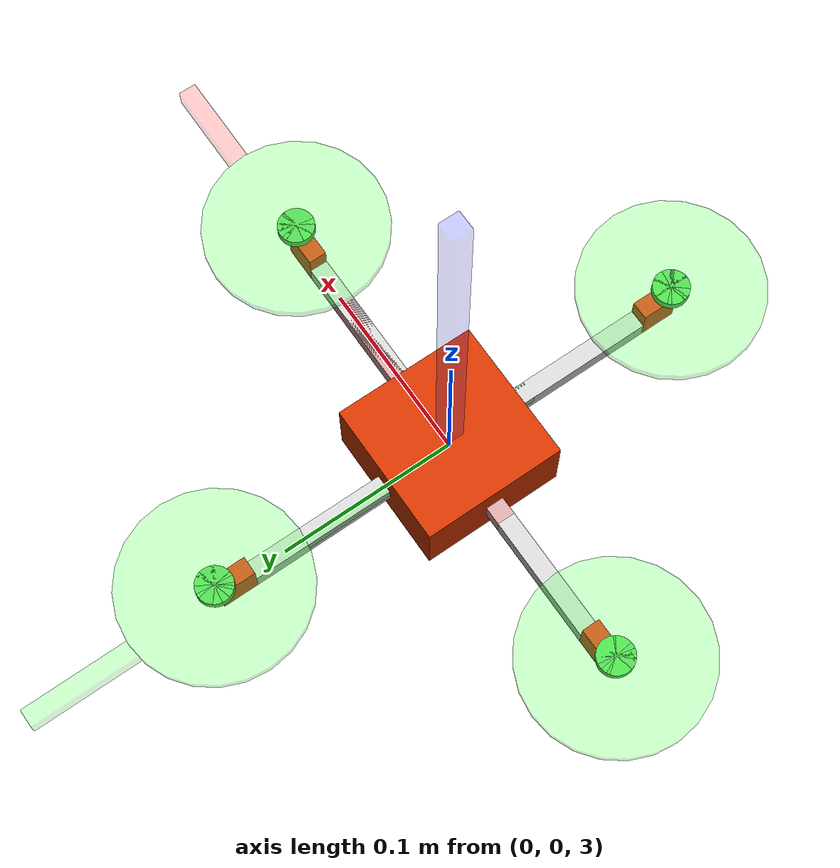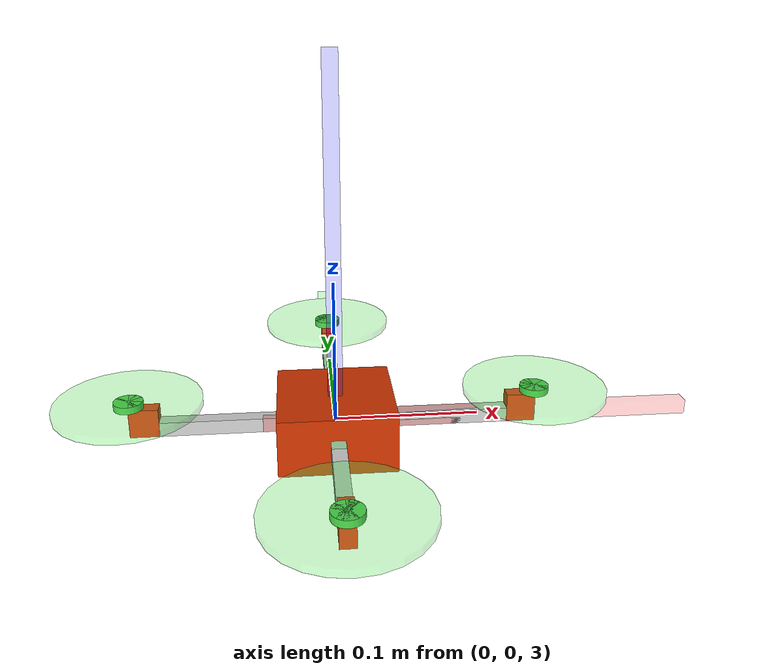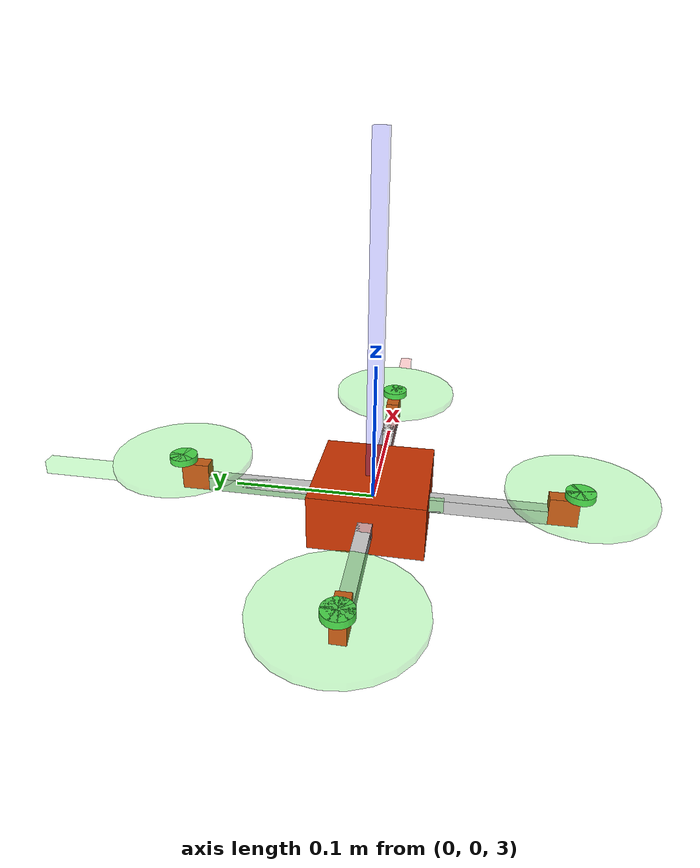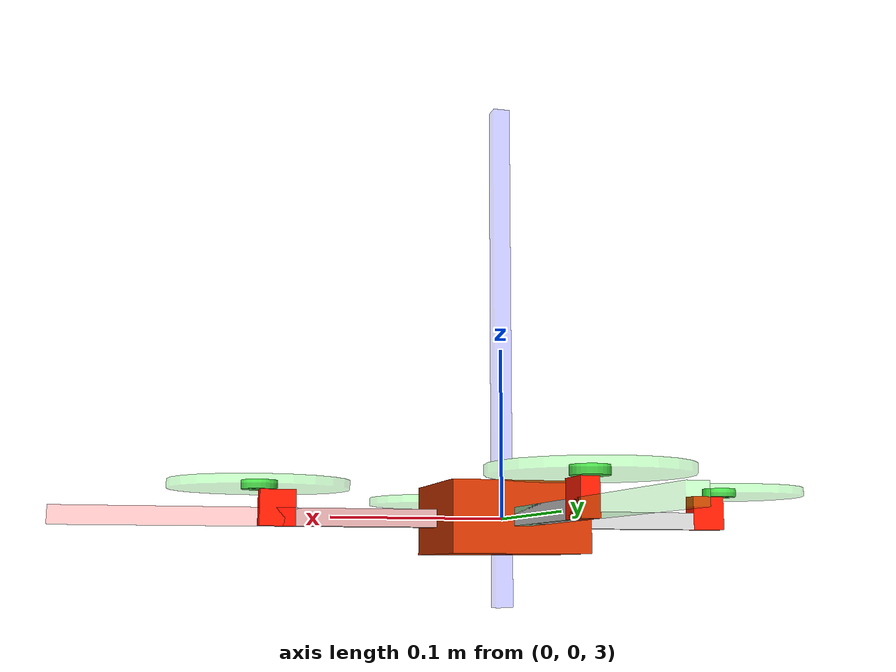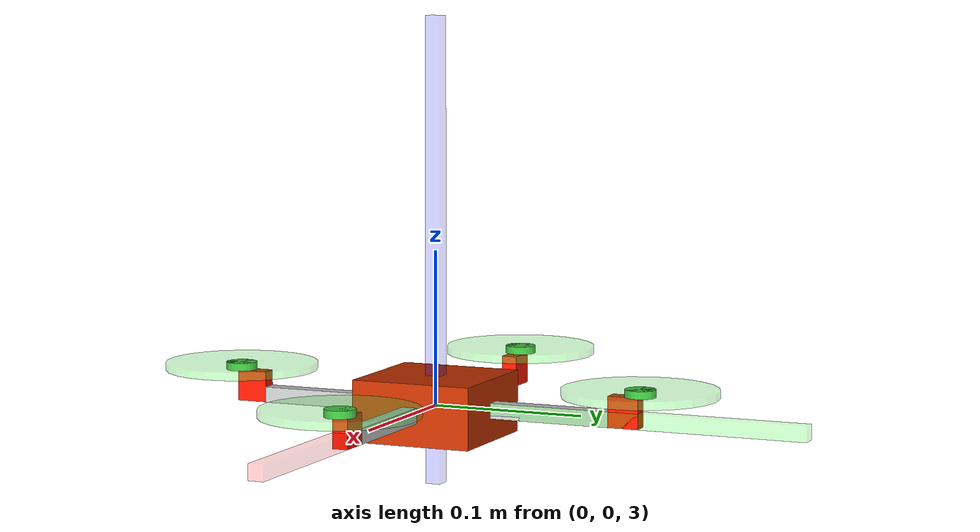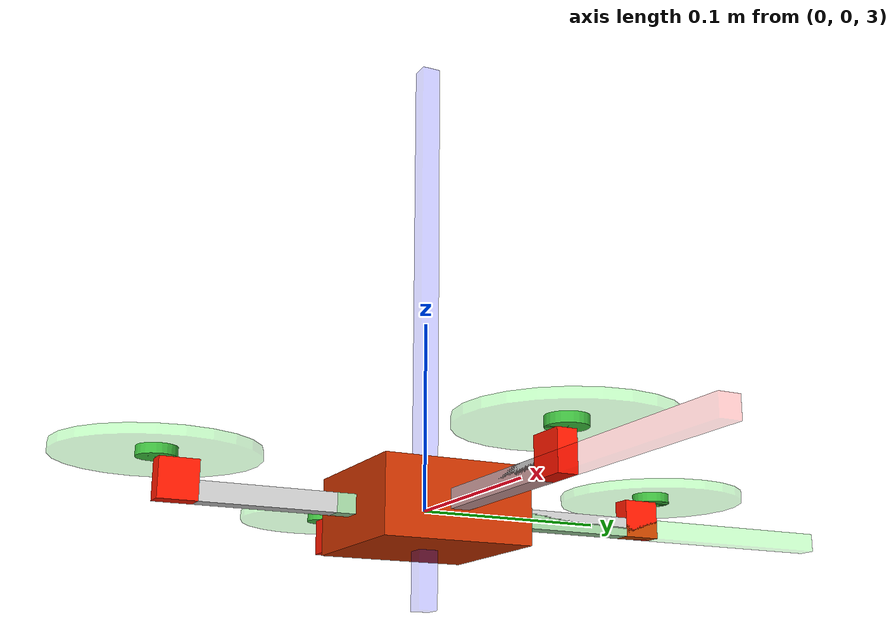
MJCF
<!--
Author: Aditya M. Deshpande
Actuators: Motor Thrusts (4-dim) and Tilt-servo velocity (4-dim)
-->
<mujoco model="quadrotortiltplus">
    <compiler angle="degree" inertiafromgeom="true" coordinate="local"/>
    <option timestep="0.01" gravity="0 0 -9.81" density="1" viscosity="1e-5" integrator="RK4"/>

    <default>
        <joint armature="1" damping="1" limited="true"/>
        <geom conaffinity="0" condim="3" density="5.0" friction="1 0.5 0.5" margin="0.01" rgba="0.8 0.6 0.4 1"/>
    </default>

    <asset>
        <texture builtin="gradient" type="skybox" height="100" width="100" rgb1="1 1 1" rgb2="0 0 0"/>
        <texture name="texgeom" builtin="flat" height="1278" mark="cross" markrgb="1 1 1" random="0.01" rgb1="0.8 0.6 0.4" rgb2="0.8 0.6 0.4" type="cube" width="127"/>
        <texture name="texplane" builtin="checker" height="100" width="100" rgb1="0 0 0" rgb2="0.8 0.8 0.8" type="2d"/>
        <material name="MatPlane" reflectance="0.5" shininess="1" specular="1" texrepeat="60 60" texture="texplane"/>
        <material name="geom" texture="texgeom" texuniform="true"/>
    </asset>

    <worldbody>
        <light cutoff="100" diffuse="1 1 1" dir="-0 0 -1.3" directional="true" exponent="1" pos="0 0 1.3" specular=".1 .1 .1"/>
        <geom conaffinity="1" condim="3" material="MatPlane" name="floor" pos="0 0 0" rgba="0.4 0.3 0.3 1" size="5 5 5" type="plane"/>

        <body name="core" pos="0 0 3.0" >
            <joint name="root" type="free" damping="0" armature="0" pos="0 0 0" limited="false"/>
            <geom name="core_geom" type="box" pos="0 0 0" quat="1 0 0 0" size=".04 .04 .02" rgba=".8 .2 0 1" mass=".1"/>

            <geom name="arm_front0" type="box" pos=".08 0 0" size=".04 .005 .005" quat="1 0 0 0" rgba=".8 .8 .8 1" mass=".02"/>
            <geom name="arm_back0" type="box" pos="-.08 0 0" size=".04 .005 .005" quat="0 0 0 1" rgba=".8 .8 .8 1" mass=".02"/>
            <geom name="arm_left0" type="box" pos="0 .08 0" size=".04 .005 .005" quat=".707 0 0 .707" rgba=".8 .8 .8 1" mass=".02"/>
            <geom name="arm_right0" type="box" pos="0 -.08 0" size=".04 .005 .005" quat=".707 0 0 -.707" rgba=".8 .8 .8 1" mass=".02"/>

            <body name="arm_front1" pos=".12 0 0">
               <geom type="box" pos=".01 0 .005" size=".01 .005 .01" quat="1 0 0 0" rgba="1 .1 0 1" mass=".02"/>
               <joint name="tilt_front_base" type="hinge" damping=".1" armature="0.01" pos="0 0 0" axis="1 0 0" limited="true" range="-60 60"/>

               <body name="motor_base_front" pos="0.01 0 0">
                   <joint name="tilt_front_motor" type="hinge" damping=".1" armature="0.01" pos="0 0 0" axis="0 1 0" limited="true" range="-60 60"/>
                   <body name="thruster0" pos="0.01 0 0.015">
                       <geom type="cylinder" pos="0 0 .0025" size=".05 .0025" quat="1 0 0 0" rgba=".3 1 .3 0.3" mass=".005"/>
                       <site name="motor_front" type="cylinder" pos="0 0 .0025" size=".01 .0025" quat="1 0 0 0" rgba=".3 .8 .3 1"/>
                   </body>
               </body>
           </body>

           <!-- Modifying the back arm for dual actuators -->
           <body name="arm_back1" pos="-.12 0 0">
               <geom type="box" pos="-.01 0 .005" size=".01 .005 .01" quat="1 0 0 0" rgba="1 .1 0 1" mass=".02"/>

               <!-- Base joint for the back arm -->
               <joint name="tilt_back_base" type="hinge" damping=".1" armature="0.01" pos="0 0 0" axis="1 0 0" limited="true" range="-60 60"/>

               <body name="motor_base_back" pos="-0.01 0 0">
                   <!-- Joint at the motor location for the back arm -->
                   <joint name="tilt_back_motor" type="hinge" damping=".1" armature="0.01" pos="0 0 0" axis="0 1 0" limited="true" range="-60 60"/>

                   <body name="thruster1" pos="-0.01 0 0.015">
                       <geom type="cylinder" pos="0 0 .0025" size=".05 .0025" quat="1 0 0 0" rgba=".3 1 .3 0.3" mass=".005"/>
                       <site name="motor_back" type="cylinder" pos="0 0 .0025" size=".01 .0025" quat="1 0 0 0" rgba=".3 .8 .3 1"/>
                   </body>
               </body>
           </body>

           <!-- Modifying the left arm for dual actuators -->
           <body name="arm_left1" pos="0 .12 0">
               <geom type="box" pos="0 .01 .005" size=".01 .005 .01" quat="0.707 0 0 -.707" rgba="1 .1 0 1" mass=".02"/>

               <!-- Base joint for the left arm -->
               <joint name="tilt_left_base" type="hinge" damping=".1" armature="0.01" pos="0 0 0" axis="0 1 0" limited="true" range="-60 60"/>

               <body name="motor_base_left" pos="0 0.01 0">
                   <!-- Joint at the motor location for the left arm -->
                   <joint name="tilt_left_motor" type="hinge" damping=".1" armature="0.01" pos="0 0 0" axis="1 0 0" limited="true" range="-60 60"/>
                   <body name="thruster2" pos="0 0.01 0.015">
                       <geom type="cylinder" pos="0 0 .0025" size=".05 .0025" quat="1 0 0 0" rgba=".3 1 .3 0.3" mass=".005"/>
                       <site name="motor_left" type="cylinder" pos="0 0 .0025" size=".01 .0025" quat="1 0 0 0" rgba=".3 .8 .3 1"/>
                   </body>
               </body>
           </body>

           <!-- Modifying the right arm for dual actuators -->
           <body name="arm_right1" pos="0 -.12 0">
               <geom type="box" pos="0 -.01 .005" size=".01 .005 .01" quat=".707 0 0 -.707" rgba="1 .1 0 1" mass=".02"/>
               <!-- Base joint for the right arm -->
               <joint name="tilt_right_base" type="hinge" damping=".1" armature="0.01" pos="0 0 0" axis="0 1 0" limited="true" range="-60 60"/>

               <body name="motor_base_right" pos="0 -0.01 0">
                   <!-- Joint at the motor location for the right arm -->
                   <joint name="tilt_right_motor" type="hinge" damping=".1" armature="0.01" pos="0 0 0" axis="1 0 0" limited="true" range="-60 60"/>

                   <body name="thruster3" pos="0 -0.01 .015">
                       <geom type="cylinder" pos="0 0 .0025" size=".05 .0025" quat="1 0 0 0" rgba=".3 1 .3 0.3" mass=".005"/>
                       <site name="motor_right" type="cylinder" pos="0 0 .0025" size=".01 .0025" quat="1 0 0 0" rgba=".3 .8 .3 1"/>
                   </body>
               </body>
           </body>

            <site name="x_axis" type="box" pos=".1 .0 .0" size=".15 .005 .005" quat="1 0 0 0" rgba="1 0 0 0.2"/>
            <site name="y_axis" type="box" pos=".0 .1 .0" size=".15 .005 .005" quat=".707 0 0 .707" rgba="0 1 0 0.2"/>
            <site name="z_axis" type="box" pos=".0 .0 .1" size=".15 .005 .005" quat="-.707 0 .707 0" rgba="0 0 1 0.2"/>
        </body>
    </worldbody>

    <actuator>
        <motor ctrllimited="true" ctrlrange="0. 1." gear="0  0. 1. 0. 0. -0.1" site="motor_front"/>
        <motor ctrllimited="true" ctrlrange="0. 1." gear="0  0. 1. 0. 0. -0.1" site="motor_left"/>
        <motor ctrllimited="true" ctrlrange="0. 1." gear="0  0. 1. 0. 0.  0.1" site="motor_back"/>
        <motor ctrllimited="true" ctrlrange="0. 1." gear="0  0. 1. 0. 0.  0.1" site="motor_right"/>

        <position ctrllimited="true" ctrlrange="-1. 1." gear="0.8" joint="tilt_left_base"/>
        <position ctrllimited="true" ctrlrange="-1. 1." gear="0.8" joint="tilt_front_base"/>
        <position ctrllimited="true" ctrlrange="-1. 1." gear="0.8" joint="tilt_right_base"/>
        <position ctrllimited="true" ctrlrange="-1. 1." gear="0.8" joint="tilt_back_base"/>

        <position ctrllimited="true" ctrlrange="-1. 1." gear="0.8" joint="tilt_front_motor"/>
        <position ctrllimited="true" ctrlrange="-1. 1." gear="0.8" joint="tilt_left_motor"/>
        <position ctrllimited="true" ctrlrange="-1. 1." gear="0.8" joint="tilt_back_motor"/>
        <position ctrllimited="true" ctrlrange="-1. 1." gear="0.8" joint="tilt_right_motor"/>
    </actuator>
</mujoco>
